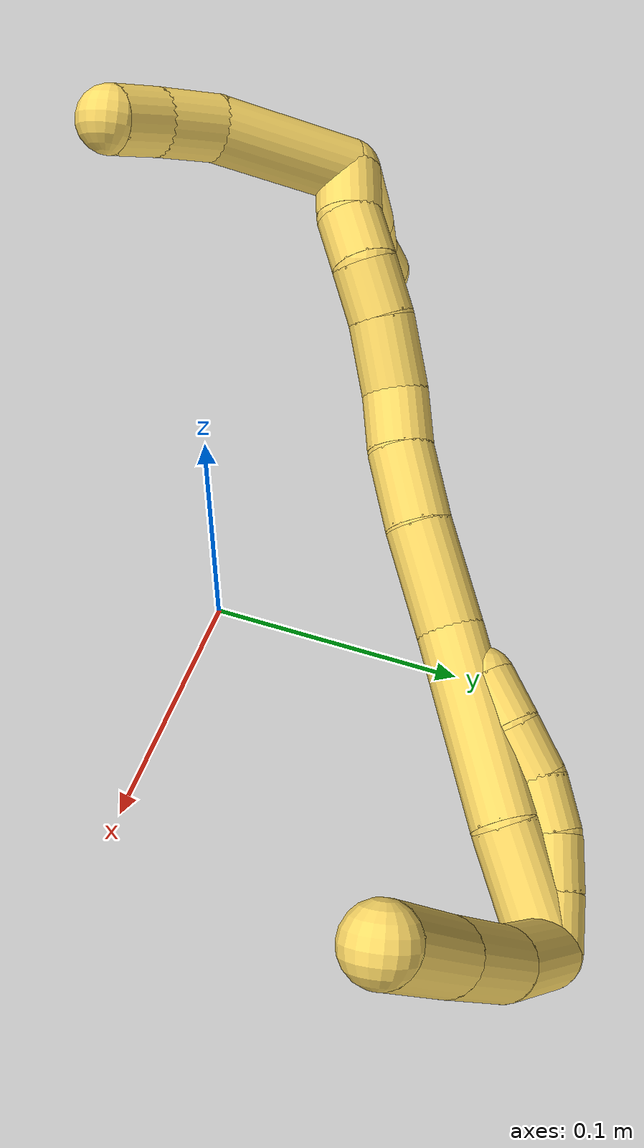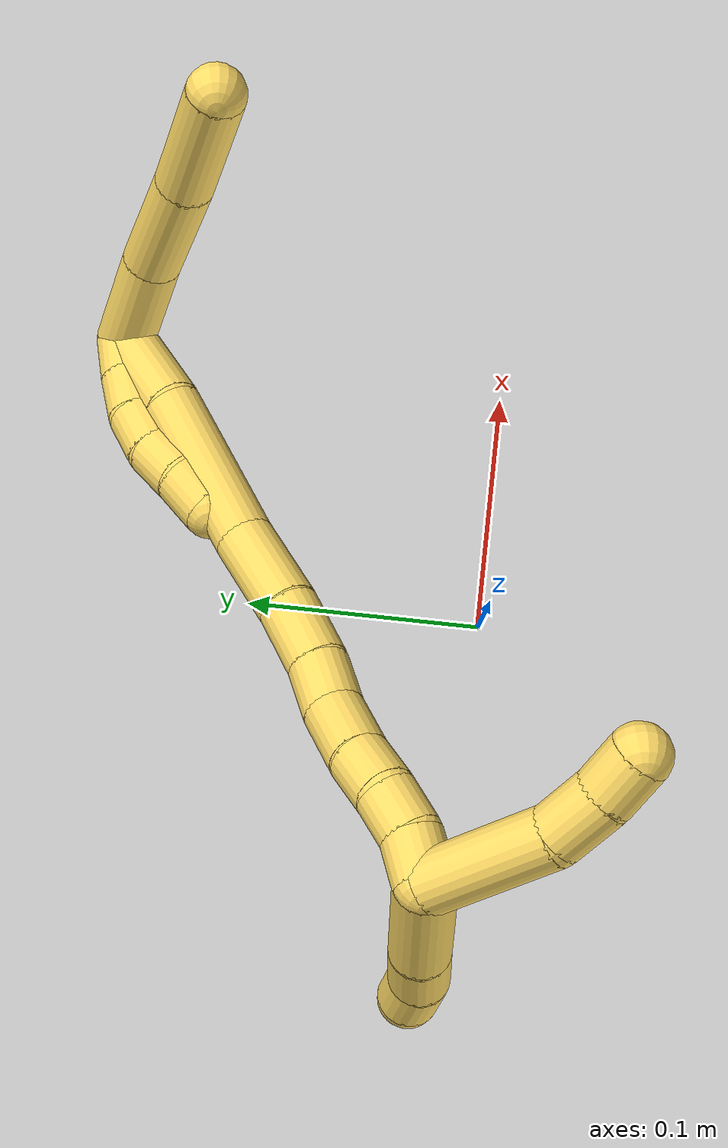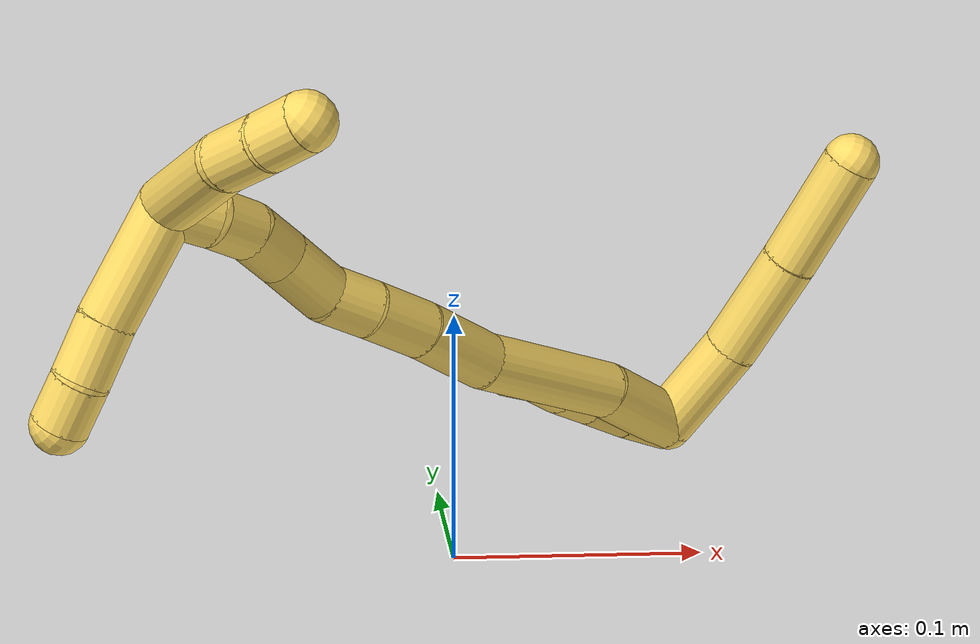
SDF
<sdf version="1.7">
 <world name="default">
  <model name="5">
   <static>0</static>
   <link name="5">
    <collision name="collision-cylinder-e_1_2_8">
     <pose>0.020698 -0.010613 0.002094 1.37602 1.0892 0.923907</pose>
     <geometry><cylinder><radius>0.0125</radius><length>0.046708</length></cylinder></geometry>
     <surface>
      <friction><ode><mu>1.16</mu><mu2>1.16</mu2><slip1>0</slip1><slip2>0</slip2></ode></friction>
      <contact><ode><kp>1e+06</kp><kd>1</kd><max_vel>0</max_vel><min_depth>0.001</min_depth></ode></contact>
     </surface>
    </collision>
    <visual name="visual-cylinder-e_1_2_8">
     <pose>0.020698 -0.010613 0.002094 1.37602 1.0892 0.923907</pose>
     <geometry><cylinder><radius>0.0125</radius><length>0.046708</length></cylinder></geometry>
     <material><ambient>1 0.858824 0.4 1</ambient></material>
    </visual>
    <collision name="collision-cylinder-e_2_8_9">
     <pose>0.062823 -0.0328 0.009428 1.14566 1.03557 0.704165</pose>
     <geometry><cylinder><radius>0.0125</radius><length>0.049822</length></cylinder></geometry>
     <surface>
      <friction><ode><mu>1.16</mu><mu2>1.16</mu2><slip1>0</slip1><slip2>0</slip2></ode></friction>
      <contact><ode><kp>1e+06</kp><kd>1</kd><max_vel>0</max_vel><min_depth>0.001</min_depth></ode></contact>
     </surface>
    </collision>
    <visual name="visual-cylinder-e_2_8_9">
     <pose>0.062823 -0.0328 0.009428 1.14566 1.03557 0.704165</pose>
     <geometry><cylinder><radius>0.0125</radius><length>0.049822</length></cylinder></geometry>
     <material><ambient>1 0.858824 0.4 1</ambient></material>
    </visual>
    <collision name="collision-cylinder-e_3_9_6">
     <pose>0.107706 -0.055669 0.020752 1.07668 1.07031 0.680543</pose>
     <geometry><cylinder><radius>0.0125</radius><length>0.05347</length></cylinder></geometry>
     <surface>
      <friction><ode><mu>1.16</mu><mu2>1.16</mu2><slip1>0</slip1><slip2>0</slip2></ode></friction>
      <contact><ode><kp>1e+06</kp><kd>1</kd><max_vel>0</max_vel><min_depth>0.001</min_depth></ode></contact>
     </surface>
    </collision>
    <visual name="visual-cylinder-e_3_9_6">
     <pose>0.107706 -0.055669 0.020752 1.07668 1.07031 0.680543</pose>
     <geometry><cylinder><radius>0.0125</radius><length>0.05347</length></cylinder></geometry>
     <material><ambient>1 0.858824 0.4 1</ambient></material>
    </visual>
    <collision name="collision-cylinder-e_1_2_10">
     <pose>-0.003247 -5.8e-05 0.009458 0.006091 -0.33066 -0.001016</pose>
     <geometry><cylinder><radius>0.0125</radius><length>0.02</length></cylinder></geometry>
     <surface>
      <friction><ode><mu>1.16</mu><mu2>1.16</mu2><slip1>0</slip1><slip2>0</slip2></ode></friction>
      <contact><ode><kp>1e+06</kp><kd>1</kd><max_vel>0</max_vel><min_depth>0.001</min_depth></ode></contact>
     </surface>
    </collision>
    <visual name="visual-cylinder-e_1_2_10">
     <pose>-0.003247 -5.8e-05 0.009458 0.006091 -0.33066 -0.001016</pose>
     <geometry><cylinder><radius>0.0125</radius><length>0.02</length></cylinder></geometry>
     <material><ambient>1 0.858824 0.4 1</ambient></material>
    </visual>
    <collision name="collision-cylinder-e_2_10_11">
     <pose>-0.009091 -0.0009 0.028541 0.081334 -0.262775 -0.010754</pose>
     <geometry><cylinder><radius>0.0125</radius><length>0.02</length></cylinder></geometry>
     <surface>
      <friction><ode><mu>1.16</mu><mu2>1.16</mu2><slip1>0</slip1><slip2>0</slip2></ode></friction>
      <contact><ode><kp>1e+06</kp><kd>1</kd><max_vel>0</max_vel><min_depth>0.001</min_depth></ode></contact>
     </surface>
    </collision>
    <visual name="visual-cylinder-e_2_10_11">
     <pose>-0.009091 -0.0009 0.028541 0.081334 -0.262775 -0.010754</pose>
     <geometry><cylinder><radius>0.0125</radius><length>0.02</length></cylinder></geometry>
     <material><ambient>1 0.858824 0.4 1</ambient></material>
    </visual>
    <collision name="collision-cylinder-e_3_11_12">
     <pose>-0.014195 -0.004797 0.047333 0.327354 -0.253321 -0.042056</pose>
     <geometry><cylinder><radius>0.0125</radius><length>0.02</length></cylinder></geometry>
     <surface>
      <friction><ode><mu>1.16</mu><mu2>1.16</mu2><slip1>0</slip1><slip2>0</slip2></ode></friction>
      <contact><ode><kp>1e+06</kp><kd>1</kd><max_vel>0</max_vel><min_depth>0.001</min_depth></ode></contact>
     </surface>
    </collision>
    <visual name="visual-cylinder-e_3_11_12">
     <pose>-0.014195 -0.004797 0.047333 0.327354 -0.253321 -0.042056</pose>
     <geometry><cylinder><radius>0.0125</radius><length>0.02</length></cylinder></geometry>
     <material><ambient>1 0.858824 0.4 1</ambient></material>
    </visual>
    <collision name="collision-cylinder-e_4_12_13">
     <pose>-0.018168 -0.013115 0.064911 0.554095 -0.147216 -0.041932</pose>
     <geometry><cylinder><radius>0.0125</radius><length>0.02</length></cylinder></geometry>
     <surface>
      <friction><ode><mu>1.16</mu><mu2>1.16</mu2><slip1>0</slip1><slip2>0</slip2></ode></friction>
      <contact><ode><kp>1e+06</kp><kd>1</kd><max_vel>0</max_vel><min_depth>0.001</min_depth></ode></contact>
     </surface>
    </collision>
    <visual name="visual-cylinder-e_4_12_13">
     <pose>-0.018168 -0.013115 0.064911 0.554095 -0.147216 -0.041932</pose>
     <geometry><cylinder><radius>0.0125</radius><length>0.02</length></cylinder></geometry>
     <material><ambient>1 0.858824 0.4 1</ambient></material>
    </visual>
    <collision name="collision-cylinder-e_5_13_5">
     <pose>-0.022678 -0.023353 0.08141 0.556781 -0.309192 -0.089023</pose>
     <geometry><cylinder><radius>0.0125</radius><length>0.02</length></cylinder></geometry>
     <surface>
      <friction><ode><mu>1.16</mu><mu2>1.16</mu2><slip1>0</slip1><slip2>0</slip2></ode></friction>
      <contact><ode><kp>1e+06</kp><kd>1</kd><max_vel>0</max_vel><min_depth>0.001</min_depth></ode></contact>
     </surface>
    </collision>
    <visual name="visual-cylinder-e_5_13_5">
     <pose>-0.022678 -0.023353 0.08141 0.556781 -0.309192 -0.089023</pose>
     <geometry><cylinder><radius>0.0125</radius><length>0.02</length></cylinder></geometry>
     <material><ambient>1 0.858824 0.4 1</ambient></material>
    </visual>
    <collision name="collision-cylinder-e_1_2_14">
     <pose>-0.003493 -0.00883 0.020678 0.403601 -0.154137 -0.031594</pose>
     <geometry><cylinder><radius>0.0125</radius><length>0.045509</length></cylinder></geometry>
     <surface>
      <friction><ode><mu>1.16</mu><mu2>1.16</mu2><slip1>0</slip1><slip2>0</slip2></ode></friction>
      <contact><ode><kp>1e+06</kp><kd>1</kd><max_vel>0</max_vel><min_depth>0.001</min_depth></ode></contact>
     </surface>
    </collision>
    <visual name="visual-cylinder-e_1_2_14">
     <pose>-0.003493 -0.00883 0.020678 0.403601 -0.154137 -0.031594</pose>
     <geometry><cylinder><radius>0.0125</radius><length>0.045509</length></cylinder></geometry>
     <material><ambient>1 0.858824 0.4 1</ambient></material>
    </visual>
    <collision name="collision-cylinder-e_2_14_15">
     <pose>-0.018936 -0.029181 0.073624 0.342903 -0.335564 -0.058638</pose>
     <geometry><cylinder><radius>0.0125</radius><length>0.072572</length></cylinder></geometry>
     <surface>
      <friction><ode><mu>1.16</mu><mu2>1.16</mu2><slip1>0</slip1><slip2>0</slip2></ode></friction>
      <contact><ode><kp>1e+06</kp><kd>1</kd><max_vel>0</max_vel><min_depth>0.001</min_depth></ode></contact>
     </surface>
    </collision>
    <visual name="visual-cylinder-e_2_14_15">
     <pose>-0.018936 -0.029181 0.073624 0.342903 -0.335564 -0.058638</pose>
     <geometry><cylinder><radius>0.0125</radius><length>0.072572</length></cylinder></geometry>
     <material><ambient>1 0.858824 0.4 1</ambient></material>
    </visual>
    <collision name="collision-cylinder-e_3_15_16">
     <pose>-0.034105 -0.048007 0.124426 0.375513 -0.160247 -0.030509</pose>
     <geometry><cylinder><radius>0.0125</radius><length>0.040364</length></cylinder></geometry>
     <surface>
      <friction><ode><mu>1.16</mu><mu2>1.16</mu2><slip1>0</slip1><slip2>0</slip2></ode></friction>
      <contact><ode><kp>1e+06</kp><kd>1</kd><max_vel>0</max_vel><min_depth>0.001</min_depth></ode></contact>
     </surface>
    </collision>
    <visual name="visual-cylinder-e_3_15_16">
     <pose>-0.034105 -0.048007 0.124426 0.375513 -0.160247 -0.030509</pose>
     <geometry><cylinder><radius>0.0125</radius><length>0.040364</length></cylinder></geometry>
     <material><ambient>1 0.858824 0.4 1</ambient></material>
    </visual>
    <collision name="collision-cylinder-e_4_16_17">
     <pose>-0.04073 -0.059713 0.156632 0.311286 -0.232736 -0.036681</pose>
     <geometry><cylinder><radius>0.0125</radius><length>0.029517</length></cylinder></geometry>
     <surface>
      <friction><ode><mu>1.16</mu><mu2>1.16</mu2><slip1>0</slip1><slip2>0</slip2></ode></friction>
      <contact><ode><kp>1e+06</kp><kd>1</kd><max_vel>0</max_vel><min_depth>0.001</min_depth></ode></contact>
     </surface>
    </collision>
    <visual name="visual-cylinder-e_4_16_17">
     <pose>-0.04073 -0.059713 0.156632 0.311286 -0.232736 -0.036681</pose>
     <geometry><cylinder><radius>0.0125</radius><length>0.029517</length></cylinder></geometry>
     <material><ambient>1 0.858824 0.4 1</ambient></material>
    </visual>
    <collision name="collision-cylinder-e_5_17_18">
     <pose>-0.047005 -0.065974 0.180911 0.173833 -0.260513 -0.022828</pose>
     <geometry><cylinder><radius>0.0125</radius><length>0.022294</length></cylinder></geometry>
     <surface>
      <friction><ode><mu>1.16</mu><mu2>1.16</mu2><slip1>0</slip1><slip2>0</slip2></ode></friction>
      <contact><ode><kp>1e+06</kp><kd>1</kd><max_vel>0</max_vel><min_depth>0.001</min_depth></ode></contact>
     </surface>
    </collision>
    <visual name="visual-cylinder-e_5_17_18">
     <pose>-0.047005 -0.065974 0.180911 0.173833 -0.260513 -0.022828</pose>
     <geometry><cylinder><radius>0.0125</radius><length>0.022294</length></cylinder></geometry>
     <material><ambient>1 0.858824 0.4 1</ambient></material>
    </visual>
    <collision name="collision-cylinder-e_6_18_19">
     <pose>-0.049449 -0.071788 0.205062 0.283855 0.030249 0.004323</pose>
     <geometry><cylinder><radius>0.0125</radius><length>0.028226</length></cylinder></geometry>
     <surface>
      <friction><ode><mu>1.16</mu><mu2>1.16</mu2><slip1>0</slip1><slip2>0</slip2></ode></friction>
      <contact><ode><kp>1e+06</kp><kd>1</kd><max_vel>0</max_vel><min_depth>0.001</min_depth></ode></contact>
     </surface>
    </collision>
    <visual name="visual-cylinder-e_6_18_19">
     <pose>-0.049449 -0.071788 0.205062 0.283855 0.030249 0.004323</pose>
     <geometry><cylinder><radius>0.0125</radius><length>0.028226</length></cylinder></geometry>
     <material><ambient>1 0.858824 0.4 1</ambient></material>
    </visual>
    <collision name="collision-cylinder-e_7_19_20">
     <pose>-0.049029 -0.07987 0.228491 0.395833 -0.000599 -0.00012</pose>
     <geometry><cylinder><radius>0.0125</radius><length>0.021432</length></cylinder></geometry>
     <surface>
      <friction><ode><mu>1.16</mu><mu2>1.16</mu2><slip1>0</slip1><slip2>0</slip2></ode></friction>
      <contact><ode><kp>1e+06</kp><kd>1</kd><max_vel>0</max_vel><min_depth>0.001</min_depth></ode></contact>
     </surface>
    </collision>
    <visual name="visual-cylinder-e_7_19_20">
     <pose>-0.049029 -0.07987 0.228491 0.395833 -0.000599 -0.00012</pose>
     <geometry><cylinder><radius>0.0125</radius><length>0.021432</length></cylinder></geometry>
     <material><ambient>1 0.858824 0.4 1</ambient></material>
    </visual>
    <collision name="collision-cylinder-e_8_20_21">
     <pose>-0.051585 -0.087608 0.247374 0.381222 -0.257252 -0.049903</pose>
     <geometry><cylinder><radius>0.0125</radius><length>0.020042</length></cylinder></geometry>
     <surface>
      <friction><ode><mu>1.16</mu><mu2>1.16</mu2><slip1>0</slip1><slip2>0</slip2></ode></friction>
      <contact><ode><kp>1e+06</kp><kd>1</kd><max_vel>0</max_vel><min_depth>0.001</min_depth></ode></contact>
     </surface>
    </collision>
    <visual name="visual-cylinder-e_8_20_21">
     <pose>-0.051585 -0.087608 0.247374 0.381222 -0.257252 -0.049903</pose>
     <geometry><cylinder><radius>0.0125</radius><length>0.020042</length></cylinder></geometry>
     <material><ambient>1 0.858824 0.4 1</ambient></material>
    </visual>
    <collision name="collision-cylinder-e_9_21_1">
     <pose>-0.057412 -0.092344 0.265773 0.119634 -0.333194 -0.02014</pose>
     <geometry><cylinder><radius>0.0125</radius><length>0.020043</length></cylinder></geometry>
     <surface>
      <friction><ode><mu>1.16</mu><mu2>1.16</mu2><slip1>0</slip1><slip2>0</slip2></ode></friction>
      <contact><ode><kp>1e+06</kp><kd>1</kd><max_vel>0</max_vel><min_depth>0.001</min_depth></ode></contact>
     </surface>
    </collision>
    <visual name="visual-cylinder-e_9_21_1">
     <pose>-0.057412 -0.092344 0.265773 0.119634 -0.333194 -0.02014</pose>
     <geometry><cylinder><radius>0.0125</radius><length>0.020043</length></cylinder></geometry>
     <material><ambient>1 0.858824 0.4 1</ambient></material>
    </visual>
    <collision name="collision-cylinder-e_1_1_22">
     <pose>-0.049583 -0.118598 0.277993 1.45913 0.413942 0.371175</pose>
     <geometry><cylinder><radius>0.0125</radius><length>0.055228</length></cylinder></geometry>
     <surface>
      <friction><ode><mu>1.16</mu><mu2>1.16</mu2><slip1>0</slip1><slip2>0</slip2></ode></friction>
      <contact><ode><kp>1e+06</kp><kd>1</kd><max_vel>0</max_vel><min_depth>0.001</min_depth></ode></contact>
     </surface>
    </collision>
    <visual name="visual-cylinder-e_1_1_22">
     <pose>-0.049583 -0.118598 0.277993 1.45913 0.413942 0.371175</pose>
     <geometry><cylinder><radius>0.0125</radius><length>0.055228</length></cylinder></geometry>
     <material><ambient>1 0.858824 0.4 1</ambient></material>
    </visual>
    <collision name="collision-cylinder-e_2_22_23">
     <pose>-0.031763 -0.153711 0.279206 1.73005 0.585855 0.680309</pose>
     <geometry><cylinder><radius>0.0125</radius><length>0.024283</length></cylinder></geometry>
     <surface>
      <friction><ode><mu>1.16</mu><mu2>1.16</mu2><slip1>0</slip1><slip2>0</slip2></ode></friction>
      <contact><ode><kp>1e+06</kp><kd>1</kd><max_vel>0</max_vel><min_depth>0.001</min_depth></ode></contact>
     </surface>
    </collision>
    <visual name="visual-cylinder-e_2_22_23">
     <pose>-0.031763 -0.153711 0.279206 1.73005 0.585855 0.680309</pose>
     <geometry><cylinder><radius>0.0125</radius><length>0.024283</length></cylinder></geometry>
     <material><ambient>1 0.858824 0.4 1</ambient></material>
    </visual>
    <collision name="collision-cylinder-e_3_23_4">
     <pose>-0.018306 -0.171153 0.275621 1.83058 0.718491 0.90864</pose>
     <geometry><cylinder><radius>0.0125</radius><length>0.02049</length></cylinder></geometry>
     <surface>
      <friction><ode><mu>1.16</mu><mu2>1.16</mu2><slip1>0</slip1><slip2>0</slip2></ode></friction>
      <contact><ode><kp>1e+06</kp><kd>1</kd><max_vel>0</max_vel><min_depth>0.001</min_depth></ode></contact>
     </surface>
    </collision>
    <visual name="visual-cylinder-e_3_23_4">
     <pose>-0.018306 -0.171153 0.275621 1.83058 0.718491 0.90864</pose>
     <geometry><cylinder><radius>0.0125</radius><length>0.02049</length></cylinder></geometry>
     <material><ambient>1 0.858824 0.4 1</ambient></material>
    </visual>
    <collision name="collision-cylinder-e_1_1_24">
     <pose>-0.086132 -0.088998 0.270747 -2.35087 -1.32819 2.16187</pose>
     <geometry><cylinder><radius>0.0125</radius><length>0.05242</length></cylinder></geometry>
     <surface>
      <friction><ode><mu>1.16</mu><mu2>1.16</mu2><slip1>0</slip1><slip2>0</slip2></ode></friction>
      <contact><ode><kp>1e+06</kp><kd>1</kd><max_vel>0</max_vel><min_depth>0.001</min_depth></ode></contact>
     </surface>
    </collision>
    <visual name="visual-cylinder-e_1_1_24">
     <pose>-0.086132 -0.088998 0.270747 -2.35087 -1.32819 2.16187</pose>
     <geometry><cylinder><radius>0.0125</radius><length>0.05242</length></cylinder></geometry>
     <material><ambient>1 0.858824 0.4 1</ambient></material>
    </visual>
    <collision name="collision-cylinder-e_2_24_25">
     <pose>-0.124174 -0.082698 0.263216 -2.61026 -1.29258 2.44924</pose>
     <geometry><cylinder><radius>0.0125</radius><length>0.026206</length></cylinder></geometry>
     <surface>
      <friction><ode><mu>1.16</mu><mu2>1.16</mu2><slip1>0</slip1><slip2>0</slip2></ode></friction>
      <contact><ode><kp>1e+06</kp><kd>1</kd><max_vel>0</max_vel><min_depth>0.001</min_depth></ode></contact>
     </surface>
    </collision>
    <visual name="visual-cylinder-e_2_24_25">
     <pose>-0.124174 -0.082698 0.263216 -2.61026 -1.29258 2.44924</pose>
     <geometry><cylinder><radius>0.0125</radius><length>0.026206</length></cylinder></geometry>
     <material><ambient>1 0.858824 0.4 1</ambient></material>
    </visual>
    <collision name="collision-cylinder-e_3_25_3">
     <pose>-0.146471 -0.077348 0.257335 -2.2381 -1.13722 1.84271</pose>
     <geometry><cylinder><radius>0.0125</radius><length>0.021373</length></cylinder></geometry>
     <surface>
      <friction><ode><mu>1.16</mu><mu2>1.16</mu2><slip1>0</slip1><slip2>0</slip2></ode></friction>
      <contact><ode><kp>1e+06</kp><kd>1</kd><max_vel>0</max_vel><min_depth>0.001</min_depth></ode></contact>
     </surface>
    </collision>
    <visual name="visual-cylinder-e_3_25_3">
     <pose>-0.146471 -0.077348 0.257335 -2.2381 -1.13722 1.84271</pose>
     <geometry><cylinder><radius>0.0125</radius><length>0.021373</length></cylinder></geometry>
     <material><ambient>1 0.858824 0.4 1</ambient></material>
    </visual>
    <collision name="collision-sphere-3">
     <pose>-0.156169 -0.073822 0.254556 0 -0 0</pose>
     <geometry><sphere><radius>0.0125</radius></sphere></geometry>
     <surface>
      <friction><ode><mu>1.16</mu><mu2>1.16</mu2><slip1>0</slip1><slip2>0</slip2></ode></friction>
      <contact><ode><kp>1e+06</kp><kd>1</kd><max_vel>0</max_vel><min_depth>0.001</min_depth></ode></contact>
     </surface>
    </collision>
    <visual name="visual-sphere-3">
     <pose>-0.156169 -0.073822 0.254556 0 -0 0</pose>
     <geometry><sphere><radius>0.0125</radius></sphere></geometry>
     <material><ambient>1 0.858824 0.4 1</ambient></material>
    </visual>
    <collision name="collision-sphere-25">
     <pose>-0.136774 -0.080875 0.260113 0 -0 0</pose>
     <geometry><sphere><radius>0.0125</radius></sphere></geometry>
     <surface>
      <friction><ode><mu>1.16</mu><mu2>1.16</mu2><slip1>0</slip1><slip2>0</slip2></ode></friction>
      <contact><ode><kp>1e+06</kp><kd>1</kd><max_vel>0</max_vel><min_depth>0.001</min_depth></ode></contact>
     </surface>
    </collision>
    <visual name="visual-sphere-25">
     <pose>-0.136774 -0.080875 0.260113 0 -0 0</pose>
     <geometry><sphere><radius>0.0125</radius></sphere></geometry>
     <material><ambient>1 0.858824 0.4 1</ambient></material>
    </visual>
    <collision name="collision-sphere-24">
     <pose>-0.111575 -0.084522 0.266318 0 -0 0</pose>
     <geometry><sphere><radius>0.0125</radius></sphere></geometry>
     <surface>
      <friction><ode><mu>1.16</mu><mu2>1.16</mu2><slip1>0</slip1><slip2>0</slip2></ode></friction>
      <contact><ode><kp>1e+06</kp><kd>1</kd><max_vel>0</max_vel><min_depth>0.001</min_depth></ode></contact>
     </surface>
    </collision>
    <visual name="visual-sphere-24">
     <pose>-0.111575 -0.084522 0.266318 0 -0 0</pose>
     <geometry><sphere><radius>0.0125</radius></sphere></geometry>
     <material><ambient>1 0.858824 0.4 1</ambient></material>
    </visual>
    <collision name="collision-sphere-4">
     <pose>-0.011563 -0.178607 0.27364 0 -0 0</pose>
     <geometry><sphere><radius>0.0125</radius></sphere></geometry>
     <surface>
      <friction><ode><mu>1.16</mu><mu2>1.16</mu2><slip1>0</slip1><slip2>0</slip2></ode></friction>
      <contact><ode><kp>1e+06</kp><kd>1</kd><max_vel>0</max_vel><min_depth>0.001</min_depth></ode></contact>
     </surface>
    </collision>
    <visual name="visual-sphere-4">
     <pose>-0.011563 -0.178607 0.27364 0 -0 0</pose>
     <geometry><sphere><radius>0.0125</radius></sphere></geometry>
     <material><ambient>1 0.858824 0.4 1</ambient></material>
    </visual>
    <collision name="collision-sphere-23">
     <pose>-0.02505 -0.1637 0.277602 0 -0 0</pose>
     <geometry><sphere><radius>0.0125</radius></sphere></geometry>
     <surface>
      <friction><ode><mu>1.16</mu><mu2>1.16</mu2><slip1>0</slip1><slip2>0</slip2></ode></friction>
      <contact><ode><kp>1e+06</kp><kd>1</kd><max_vel>0</max_vel><min_depth>0.001</min_depth></ode></contact>
     </surface>
    </collision>
    <visual name="visual-sphere-23">
     <pose>-0.02505 -0.1637 0.277602 0 -0 0</pose>
     <geometry><sphere><radius>0.0125</radius></sphere></geometry>
     <material><ambient>1 0.858824 0.4 1</ambient></material>
    </visual>
    <collision name="collision-sphere-22">
     <pose>-0.038476 -0.143722 0.28081 0 -0 0</pose>
     <geometry><sphere><radius>0.0125</radius></sphere></geometry>
     <surface>
      <friction><ode><mu>1.16</mu><mu2>1.16</mu2><slip1>0</slip1><slip2>0</slip2></ode></friction>
      <contact><ode><kp>1e+06</kp><kd>1</kd><max_vel>0</max_vel><min_depth>0.001</min_depth></ode></contact>
     </surface>
    </collision>
    <visual name="visual-sphere-22">
     <pose>-0.038476 -0.143722 0.28081 0 -0 0</pose>
     <geometry><sphere><radius>0.0125</radius></sphere></geometry>
     <material><ambient>1 0.858824 0.4 1</ambient></material>
    </visual>
    <collision name="collision-sphere-1">
     <pose>-0.06069 -0.093474 0.275176 0 -0 0</pose>
     <geometry><sphere><radius>0.0125</radius></sphere></geometry>
     <surface>
      <friction><ode><mu>1.16</mu><mu2>1.16</mu2><slip1>0</slip1><slip2>0</slip2></ode></friction>
      <contact><ode><kp>1e+06</kp><kd>1</kd><max_vel>0</max_vel><min_depth>0.001</min_depth></ode></contact>
     </surface>
    </collision>
    <visual name="visual-sphere-1">
     <pose>-0.06069 -0.093474 0.275176 0 -0 0</pose>
     <geometry><sphere><radius>0.0125</radius></sphere></geometry>
     <material><ambient>1 0.858824 0.4 1</ambient></material>
    </visual>
    <collision name="collision-sphere-21">
     <pose>-0.054134 -0.091213 0.25637 0 -0 0</pose>
     <geometry><sphere><radius>0.0125</radius></sphere></geometry>
     <surface>
      <friction><ode><mu>1.16</mu><mu2>1.16</mu2><slip1>0</slip1><slip2>0</slip2></ode></friction>
      <contact><ode><kp>1e+06</kp><kd>1</kd><max_vel>0</max_vel><min_depth>0.001</min_depth></ode></contact>
     </surface>
    </collision>
    <visual name="visual-sphere-21">
     <pose>-0.054134 -0.091213 0.25637 0 -0 0</pose>
     <geometry><sphere><radius>0.0125</radius></sphere></geometry>
     <material><ambient>1 0.858824 0.4 1</ambient></material>
    </visual>
    <collision name="collision-sphere-11">
     <pose>-0.011689 -0.001684 0.038166 0 -0 0</pose>
     <geometry><sphere><radius>0.0125</radius></sphere></geometry>
     <surface>
      <friction><ode><mu>1.16</mu><mu2>1.16</mu2><slip1>0</slip1><slip2>0</slip2></ode></friction>
      <contact><ode><kp>1e+06</kp><kd>1</kd><max_vel>0</max_vel><min_depth>0.001</min_depth></ode></contact>
     </surface>
    </collision>
    <visual name="visual-sphere-11">
     <pose>-0.011689 -0.001684 0.038166 0 -0 0</pose>
     <geometry><sphere><radius>0.0125</radius></sphere></geometry>
     <material><ambient>1 0.858824 0.4 1</ambient></material>
    </visual>
    <collision name="collision-sphere-10">
     <pose>-0.006493 -0.000115 0.018916 0 -0 0</pose>
     <geometry><sphere><radius>0.0125</radius></sphere></geometry>
     <surface>
      <friction><ode><mu>1.16</mu><mu2>1.16</mu2><slip1>0</slip1><slip2>0</slip2></ode></friction>
      <contact><ode><kp>1e+06</kp><kd>1</kd><max_vel>0</max_vel><min_depth>0.001</min_depth></ode></contact>
     </surface>
    </collision>
    <visual name="visual-sphere-10">
     <pose>-0.006493 -0.000115 0.018916 0 -0 0</pose>
     <geometry><sphere><radius>0.0125</radius></sphere></geometry>
     <material><ambient>1 0.858824 0.4 1</ambient></material>
    </visual>
    <collision name="collision-sphere-6">
     <pose>0.131162 -0.066963 0.026836 0 -0 0</pose>
     <geometry><sphere><radius>0.0125</radius></sphere></geometry>
     <surface>
      <friction><ode><mu>1.16</mu><mu2>1.16</mu2><slip1>0</slip1><slip2>0</slip2></ode></friction>
      <contact><ode><kp>1e+06</kp><kd>1</kd><max_vel>0</max_vel><min_depth>0.001</min_depth></ode></contact>
     </surface>
    </collision>
    <visual name="visual-sphere-6">
     <pose>0.131162 -0.066963 0.026836 0 -0 0</pose>
     <geometry><sphere><radius>0.0125</radius></sphere></geometry>
     <material><ambient>1 0.858824 0.4 1</ambient></material>
    </visual>
    <collision name="collision-sphere-9">
     <pose>0.08425 -0.044375 0.014668 0 -0 0</pose>
     <geometry><sphere><radius>0.0125</radius></sphere></geometry>
     <surface>
      <friction><ode><mu>1.16</mu><mu2>1.16</mu2><slip1>0</slip1><slip2>0</slip2></ode></friction>
      <contact><ode><kp>1e+06</kp><kd>1</kd><max_vel>0</max_vel><min_depth>0.001</min_depth></ode></contact>
     </surface>
    </collision>
    <visual name="visual-sphere-9">
     <pose>0.08425 -0.044375 0.014668 0 -0 0</pose>
     <geometry><sphere><radius>0.0125</radius></sphere></geometry>
     <material><ambient>1 0.858824 0.4 1</ambient></material>
    </visual>
    <collision name="collision-sphere-2">
     <geometry><sphere><radius>0.0125</radius></sphere></geometry>
     <surface>
      <friction><ode><mu>1.16</mu><mu2>1.16</mu2><slip1>0</slip1><slip2>0</slip2></ode></friction>
      <contact><ode><kp>1e+06</kp><kd>1</kd><max_vel>0</max_vel><min_depth>0.001</min_depth></ode></contact>
     </surface>
    </collision>
    <visual name="visual-sphere-2">
     <geometry><sphere><radius>0.0125</radius></sphere></geometry>
     <material><ambient>1 0.858824 0.4 1</ambient></material>
    </visual>
    <collision name="collision-sphere-19">
     <pose>-0.049022 -0.075738 0.218604 0 -0 0</pose>
     <geometry><sphere><radius>0.0125</radius></sphere></geometry>
     <surface>
      <friction><ode><mu>1.16</mu><mu2>1.16</mu2><slip1>0</slip1><slip2>0</slip2></ode></friction>
      <contact><ode><kp>1e+06</kp><kd>1</kd><max_vel>0</max_vel><min_depth>0.001</min_depth></ode></contact>
     </surface>
    </collision>
    <visual name="visual-sphere-19">
     <pose>-0.049022 -0.075738 0.218604 0 -0 0</pose>
     <geometry><sphere><radius>0.0125</radius></sphere></geometry>
     <material><ambient>1 0.858824 0.4 1</ambient></material>
    </visual>
    <collision name="collision-sphere-8">
     <pose>0.041395 -0.021226 0.004187 0 -0 0</pose>
     <geometry><sphere><radius>0.0125</radius></sphere></geometry>
     <surface>
      <friction><ode><mu>1.16</mu><mu2>1.16</mu2><slip1>0</slip1><slip2>0</slip2></ode></friction>
      <contact><ode><kp>1e+06</kp><kd>1</kd><max_vel>0</max_vel><min_depth>0.001</min_depth></ode></contact>
     </surface>
    </collision>
    <visual name="visual-sphere-8">
     <pose>0.041395 -0.021226 0.004187 0 -0 0</pose>
     <geometry><sphere><radius>0.0125</radius></sphere></geometry>
     <material><ambient>1 0.858824 0.4 1</ambient></material>
    </visual>
    <collision name="collision-sphere-12">
     <pose>-0.016701 -0.00791 0.056499 0 -0 0</pose>
     <geometry><sphere><radius>0.0125</radius></sphere></geometry>
     <surface>
      <friction><ode><mu>1.16</mu><mu2>1.16</mu2><slip1>0</slip1><slip2>0</slip2></ode></friction>
      <contact><ode><kp>1e+06</kp><kd>1</kd><max_vel>0</max_vel><min_depth>0.001</min_depth></ode></contact>
     </surface>
    </collision>
    <visual name="visual-sphere-12">
     <pose>-0.016701 -0.00791 0.056499 0 -0 0</pose>
     <geometry><sphere><radius>0.0125</radius></sphere></geometry>
     <material><ambient>1 0.858824 0.4 1</ambient></material>
    </visual>
    <collision name="collision-sphere-13">
     <pose>-0.019635 -0.01832 0.073323 0 -0 0</pose>
     <geometry><sphere><radius>0.0125</radius></sphere></geometry>
     <surface>
      <friction><ode><mu>1.16</mu><mu2>1.16</mu2><slip1>0</slip1><slip2>0</slip2></ode></friction>
      <contact><ode><kp>1e+06</kp><kd>1</kd><max_vel>0</max_vel><min_depth>0.001</min_depth></ode></contact>
     </surface>
    </collision>
    <visual name="visual-sphere-13">
     <pose>-0.019635 -0.01832 0.073323 0 -0 0</pose>
     <geometry><sphere><radius>0.0125</radius></sphere></geometry>
     <material><ambient>1 0.858824 0.4 1</ambient></material>
    </visual>
    <collision name="collision-sphere-5">
     <pose>-0.02572 -0.028387 0.089497 0 -0 0</pose>
     <geometry><sphere><radius>0.0125</radius></sphere></geometry>
     <surface>
      <friction><ode><mu>1.16</mu><mu2>1.16</mu2><slip1>0</slip1><slip2>0</slip2></ode></friction>
      <contact><ode><kp>1e+06</kp><kd>1</kd><max_vel>0</max_vel><min_depth>0.001</min_depth></ode></contact>
     </surface>
    </collision>
    <visual name="visual-sphere-5">
     <pose>-0.02572 -0.028387 0.089497 0 -0 0</pose>
     <geometry><sphere><radius>0.0125</radius></sphere></geometry>
     <material><ambient>1 0.858824 0.4 1</ambient></material>
    </visual>
    <collision name="collision-sphere-14">
     <pose>-0.006987 -0.017661 0.041356 0 -0 0</pose>
     <geometry><sphere><radius>0.0125</radius></sphere></geometry>
     <surface>
      <friction><ode><mu>1.16</mu><mu2>1.16</mu2><slip1>0</slip1><slip2>0</slip2></ode></friction>
      <contact><ode><kp>1e+06</kp><kd>1</kd><max_vel>0</max_vel><min_depth>0.001</min_depth></ode></contact>
     </surface>
    </collision>
    <visual name="visual-sphere-14">
     <pose>-0.006987 -0.017661 0.041356 0 -0 0</pose>
     <geometry><sphere><radius>0.0125</radius></sphere></geometry>
     <material><ambient>1 0.858824 0.4 1</ambient></material>
    </visual>
    <collision name="collision-sphere-15">
     <pose>-0.030885 -0.0407 0.105891 0 -0 0</pose>
     <geometry><sphere><radius>0.0125</radius></sphere></geometry>
     <surface>
      <friction><ode><mu>1.16</mu><mu2>1.16</mu2><slip1>0</slip1><slip2>0</slip2></ode></friction>
      <contact><ode><kp>1e+06</kp><kd>1</kd><max_vel>0</max_vel><min_depth>0.001</min_depth></ode></contact>
     </surface>
    </collision>
    <visual name="visual-sphere-15">
     <pose>-0.030885 -0.0407 0.105891 0 -0 0</pose>
     <geometry><sphere><radius>0.0125</radius></sphere></geometry>
     <material><ambient>1 0.858824 0.4 1</ambient></material>
    </visual>
    <collision name="collision-sphere-16">
     <pose>-0.037326 -0.055314 0.142961 0 -0 0</pose>
     <geometry><sphere><radius>0.0125</radius></sphere></geometry>
     <surface>
      <friction><ode><mu>1.16</mu><mu2>1.16</mu2><slip1>0</slip1><slip2>0</slip2></ode></friction>
      <contact><ode><kp>1e+06</kp><kd>1</kd><max_vel>0</max_vel><min_depth>0.001</min_depth></ode></contact>
     </surface>
    </collision>
    <visual name="visual-sphere-16">
     <pose>-0.037326 -0.055314 0.142961 0 -0 0</pose>
     <geometry><sphere><radius>0.0125</radius></sphere></geometry>
     <material><ambient>1 0.858824 0.4 1</ambient></material>
    </visual>
    <collision name="collision-sphere-17">
     <pose>-0.044133 -0.064111 0.170303 0 -0 0</pose>
     <geometry><sphere><radius>0.0125</radius></sphere></geometry>
     <surface>
      <friction><ode><mu>1.16</mu><mu2>1.16</mu2><slip1>0</slip1><slip2>0</slip2></ode></friction>
      <contact><ode><kp>1e+06</kp><kd>1</kd><max_vel>0</max_vel><min_depth>0.001</min_depth></ode></contact>
     </surface>
    </collision>
    <visual name="visual-sphere-17">
     <pose>-0.044133 -0.064111 0.170303 0 -0 0</pose>
     <geometry><sphere><radius>0.0125</radius></sphere></geometry>
     <material><ambient>1 0.858824 0.4 1</ambient></material>
    </visual>
    <collision name="collision-sphere-18">
     <pose>-0.049876 -0.067837 0.19152 0 -0 0</pose>
     <geometry><sphere><radius>0.0125</radius></sphere></geometry>
     <surface>
      <friction><ode><mu>1.16</mu><mu2>1.16</mu2><slip1>0</slip1><slip2>0</slip2></ode></friction>
      <contact><ode><kp>1e+06</kp><kd>1</kd><max_vel>0</max_vel><min_depth>0.001</min_depth></ode></contact>
     </surface>
    </collision>
    <visual name="visual-sphere-18">
     <pose>-0.049876 -0.067837 0.19152 0 -0 0</pose>
     <geometry><sphere><radius>0.0125</radius></sphere></geometry>
     <material><ambient>1 0.858824 0.4 1</ambient></material>
    </visual>
    <collision name="collision-sphere-20">
     <pose>-0.049035 -0.084002 0.238379 0 -0 0</pose>
     <geometry><sphere><radius>0.0125</radius></sphere></geometry>
     <surface>
      <friction><ode><mu>1.16</mu><mu2>1.16</mu2><slip1>0</slip1><slip2>0</slip2></ode></friction>
      <contact><ode><kp>1e+06</kp><kd>1</kd><max_vel>0</max_vel><min_depth>0.001</min_depth></ode></contact>
     </surface>
    </collision>
    <visual name="visual-sphere-20">
     <pose>-0.049035 -0.084002 0.238379 0 -0 0</pose>
     <geometry><sphere><radius>0.0125</radius></sphere></geometry>
     <material><ambient>1 0.858824 0.4 1</ambient></material>
    </visual>
    <inertial>
     <pose>-0.021423 -0.057682 0.135485 0 -0 0</pose>
     <mass>0.75</mass>
     <inertia>
      <ixx>0.000116</ixx>
      <ixy>0</ixy>
      <ixz>0</ixz>
      <iyy>0.000122</iyy>
      <iyz>0</iyz>
      <izz>7.7e-05</izz>
     </inertia>
    </inertial>
   </link>
   <pose>0.108137 0.164851 0.01248 -0.131633 -0.894874 0.380528</pose>
  </model>
 </world>
</sdf>
